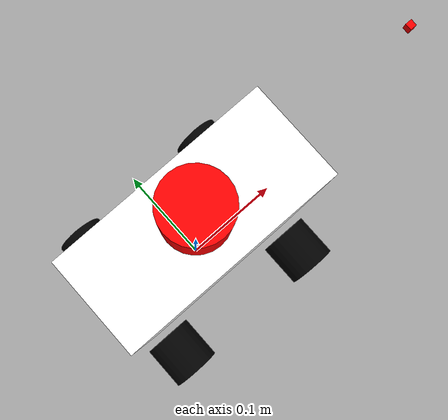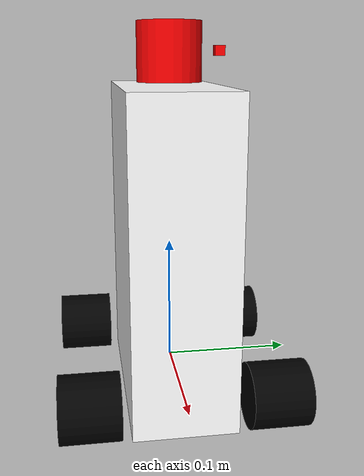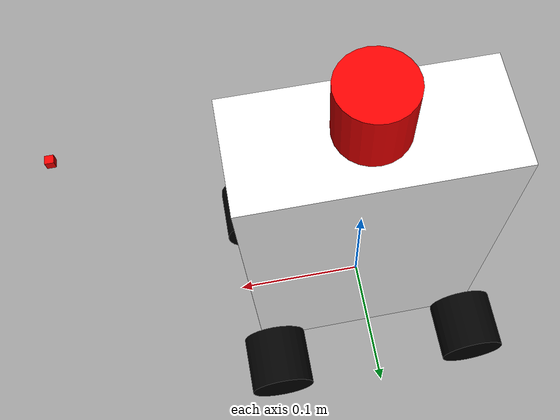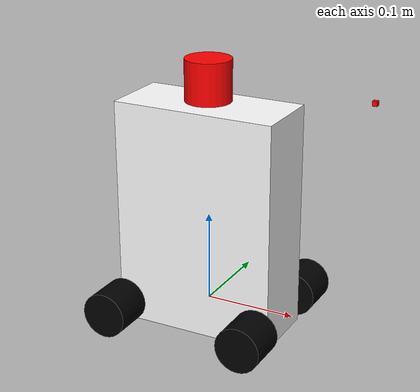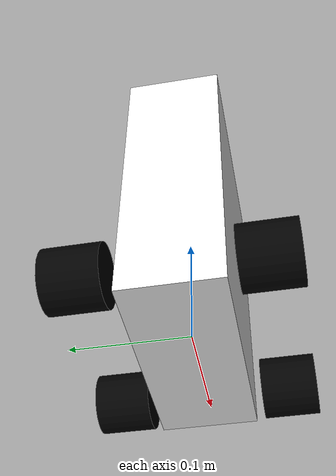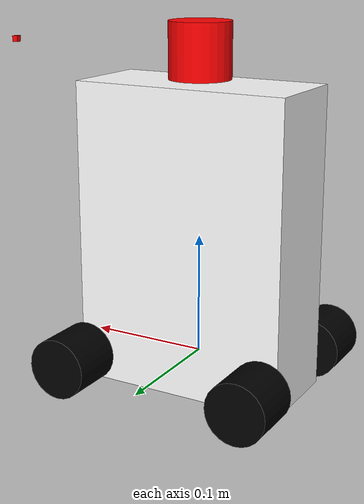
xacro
<?xml version="1.0"?>
<robot xmlns:xacro="http://www.ros.org/wiki/xacro"  name="robot">
  <xacro:include filename="robot_core.xacro" />
  <xacro:include filename="gazebo_control.xacro" />
  <xacro:include filename="inertial_macros.xacro"/>
<xacro:include filename="laser.xacro"/>
<xacro:include filename="camera.xacro"/>

</robot>

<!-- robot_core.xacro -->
<robot xmlns:xacro="http://www.ros.org/wiki/xacro">

	<xacro:include filename="inertial_macros.xacro"/>

	<material name="white">
		<color rgba="1 1 1 1"/>
	</material>

	<material name="black">
		<color rgba="0 0 0 1"/>
	</material>

	<material name="red">
		<color rgba="1 0 0 1"/>
	</material>

	<!-- BASE LINK -->
	<link name="base_link">

	</link>
	<joint name="base_footprint_joint" type="fixed">
		<parent link="base_link"/>
		<child link="base_footprint"/>
		<origin xyz="0 0 0" rpy="0 0 0"/>
	</joint>

	<link name="base_footprint">

	</link>

	<!-- CHASSIS -->
	<joint name="chassis_joint" type="fixed">
		<parent link="base_link"/>
		<child link="chassis_link"/>
		<origin xyz="0 0 0"/>
	</joint>

	<link name="chassis_link">
		<visual>
			<origin xyz="0 0 0.1"/>
			<geometry>
				<box size="0.18 0.08 0.25"/>
			</geometry>
			<material name="white"/>
		</visual>

		<collision>
			<origin xyz="0 0 0.1"/>
			<geometry>
				<box size="0.18 0.08 0.25"/>
			</geometry>
		</collision>

		<xacro:inertial_box mass="0.5" x="0.18" y="0.08" z="0.25">
        	<origin xyz="0 0 0.1" rpy="0 0 0"/>
        </xacro:inertial_box>
	</link>

	<gazebo reference="chassis">
		<material>Gazebo/White</material>
	</gazebo>

	<!-- WHEEL1 -->
	<joint name="wheel1_joint" type="continuous">
		<parent link="base_link"/>
		<child link="wheel1_link"/>
		<origin xyz="0.08 0.07 0" rpy="${-pi/2} 0 0"/>
		<axis xyz="0 0 1"/>
		<limit effort="10000" velocity="1000" />
	    <dynamics damping="1.0" friction="1.0" />
	</joint>

	<link name="wheel1_link">
		<visual>
			<geometry>
				<cylinder radius="0.025" length="0.045"/>
			</geometry>
			<material name="black"/>
		</visual>

		<collision>
			<geometry>
				<cylinder radius="0.025" length="0.045"/>
			</geometry>
		</collision>

		<xacro:inertial_cylinder mass="0.1" length="0.045" radius="0.025">
        	<origin xyz="0 0 0" rpy="0 0 0"/>
        </xacro:inertial_cylinder>
	</link>

	<gazebo reference="wheel1_link">
		<material>Gazebo/Black</material>
	</gazebo>

	<!-- WHEEL2 -->
	<joint name="wheel2_joint" type="continuous">
		<parent link="base_link"/>
		<child link="wheel2_link"/>
		<origin xyz="0.08 -0.07 0" rpy="${pi/2} 0 0"/>
		<axis xyz="0 0 -1"/>
		<limit effort="10000" velocity="1000" />
	    <dynamics damping="1.0" friction="1.0" />
	</joint>

	<link name="wheel2_link">
		<visual>
			<geometry>
				<cylinder radius="0.025" length="0.045"/>
			</geometry>
			<material name="black"/>
		</visual>

		<collision>
			<geometry>
				<cylinder radius="0.025" length="0.045"/>
			</geometry>
		</collision>

		<xacro:inertial_cylinder mass="0.1" length="0.045" radius="0.025">
        	<origin xyz="0 0 0" rpy="0 0 0"/>
        </xacro:inertial_cylinder>
	</link>

	<gazebo reference="wheel2_link">
		<material>Gazebo/Black</material>
	</gazebo>

	<!-- WHEEL3 -->
	<joint name="wheel3_joint" type="continuous">
		<parent link="base_link"/>
		<child link="wheel3_link"/>
		<origin xyz="-0.08 0.07 0" rpy="${-pi/2} 0 0"/>
		<axis xyz="0 0 1"/>
		<limit effort="10000" velocity="1000" />
	    <dynamics damping="1.0" friction="1.0" />
	</joint>

	<link name="wheel3_link">
		<visual>
			<geometry>
				<cylinder radius="0.025" length="0.045"/>
			</geometry>
			<material name="black"/>
		</visual>

		<collision>
			<geometry>
				<cylinder radius="0.025" length="0.045"/>
			</geometry>
		</collision>

		<xacro:inertial_cylinder mass="0.1" length="0.045" radius="0.025">
        	<origin xyz="0 0 0" rpy="0 0 0"/>
        </xacro:inertial_cylinder>
	</link>

	<gazebo reference="wheel3_link">
		<material>Gazebo/Black</material>
	</gazebo>

	<!-- WHEEL4 -->
	<joint name="wheel4_joint" type="continuous">
		<parent link="base_link"/>
		<child link="wheel4_link"/>
		<origin xyz="-0.08 -0.07 0" rpy="${pi/2} 0 0"/>
		<axis xyz="0 0 -1"/>
		<limit effort="10000" velocity="1000" />
	    <dynamics damping="1.0" friction="1.0" />
	</joint>

	<link name="wheel4_link">
		<visual>
			<geometry>
				<cylinder radius="0.025" length="0.045"/>
			</geometry>
			<material name="black"/>
		</visual>

		<collision>
			<geometry>
				<cylinder radius="0.025" length="0.045"/>
			</geometry>
		</collision>

		<xacro:inertial_cylinder mass="0.1" length="0.045" radius="0.025">
        	<origin xyz="0 0 0" rpy="0 0 0"/>
        </xacro:inertial_cylinder>
	</link>

	<gazebo reference="wheel4_link">
		<material>Gazebo/Black</material>
	</gazebo>
</robot>

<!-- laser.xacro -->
<robot xmlns:xacro="http://www.ros.org/wiki/xacro" >
<!--LASER-->
	 <joint name="laser_joint" type="fixed">
        <parent link="chassis_link"/>
        <child link="laser_frame"/>
        <origin xyz="0 0 0.25" rpy="0 0 0"/>
    </joint>

    <link name="laser_frame">
        <visual>
			<geometry>
				<cylinder radius="0.025" length="0.045"/>
			</geometry>
			<material name="red"/>
		</visual>

		<collision>
			<geometry>
				<cylinder radius="0.025" length="0.045"/>
			</geometry>
		</collision>

        <xacro:inertial_cylinder mass="0.1" length="0.045" radius="0.025">
        	<origin xyz="0 0 0" rpy="0 0 0"/>
        </xacro:inertial_cylinder>
    </link>

     <gazebo reference="laser_frame">
        <material>Gazebo/Red</material>
        <sensor name="laser" type="ray">
            <pose> 0 0 0 0 0 0 </pose>
            <visualize>true</visualize>
            <update_rate>10</update_rate>
            <ray>
                <scan>
                    <horizontal>
                        <samples>360</samples>
                        <min_angle>-3.14</min_angle>
                        <max_angle>3.14</max_angle>
                    </horizontal>
                </scan>
                <range>
                    <min>0.3</min>
                    <max>12</max>
                </range>
            </ray>
            <plugin name="laser_controller" filename="libgazebo_ros_ray_sensor.so">
                <ros>
                    <argument>~/out:=scan</argument>
                </ros>
                <output_type>sensor_msgs/LaserScan</output_type>
                <frame_name>laser_frame</frame_name>
            </plugin>
        </sensor>
    </gazebo>

</robot>

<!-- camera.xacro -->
<robot xmlns:xacro="http://www.ros.org/wiki/xacro" >
<!--Camera-->
	 <joint name="camera_joint" type="fixed">
        <parent link="chassis_link"/>
        <child link="camera_link"/>
        <origin xyz="0.18 0 0.25" rpy="0 0 0"/>
    </joint>

    <link name="camera_link">
        <visual>
			<geometry>
				<box size="0.005 0.005 0.005"/>
			</geometry>
			<material name="red"/>
		</visual>
    </link>

    <joint name="camera_optical_joint" type="fixed">
        <parent link="camera_link"/>
        <child link="camera_link_optical"/>
        <origin xyz="0 0 0" rpy="${-pi/2} 0 ${-pi/2}"/>
    </joint>
    <link name="camera_link_optical"></link>

     <gazebo reference="laser_frame">
        <material>Gazebo/Red</material>

        <sensor name="camera" type="camera">
            <pose> 0 0 0 0 0 0 </pose>
            <visualize>true</visualize>
            <update_rate>10</update_rate>
            <camera>
                <horizontal_fov>1.089</horizontal_fov>
                <image>
                    <format>R8G8B8</format>
                    <width>640</width>
                    <height>480</height>
                </image>
                <clip>
                    <near>0.05</near>
                    <far>8.0</far>
                </clip>
            </camera>
            <plugin name="camera_controller" filename="libgazebo_ros_camera.so">
                <frame_name>camera_link_optical</frame_name>
            </plugin>
        </sensor>
    </gazebo>

</robot>
